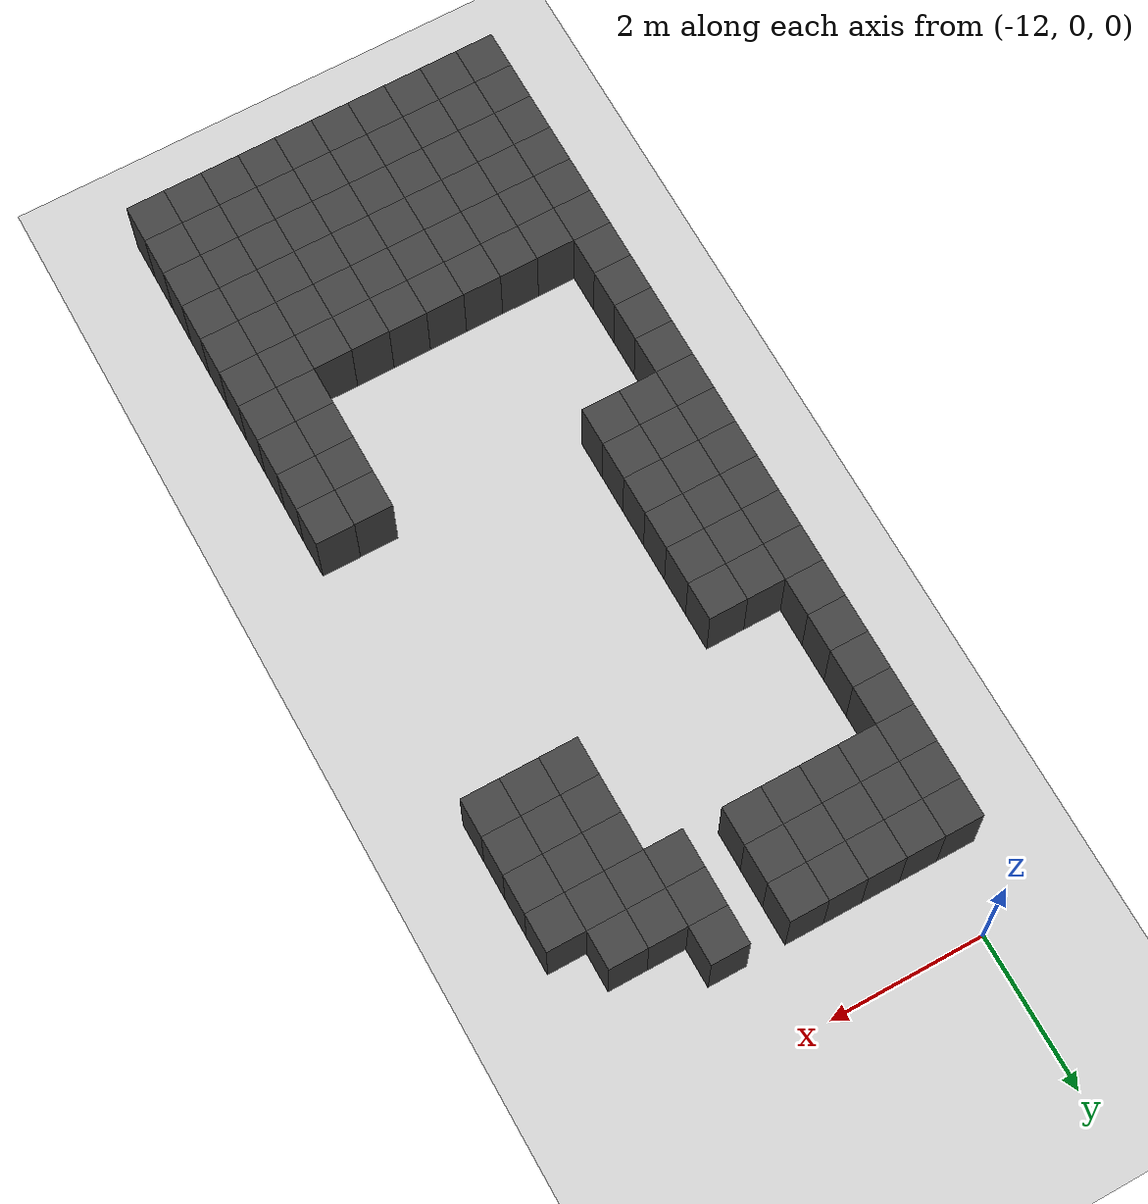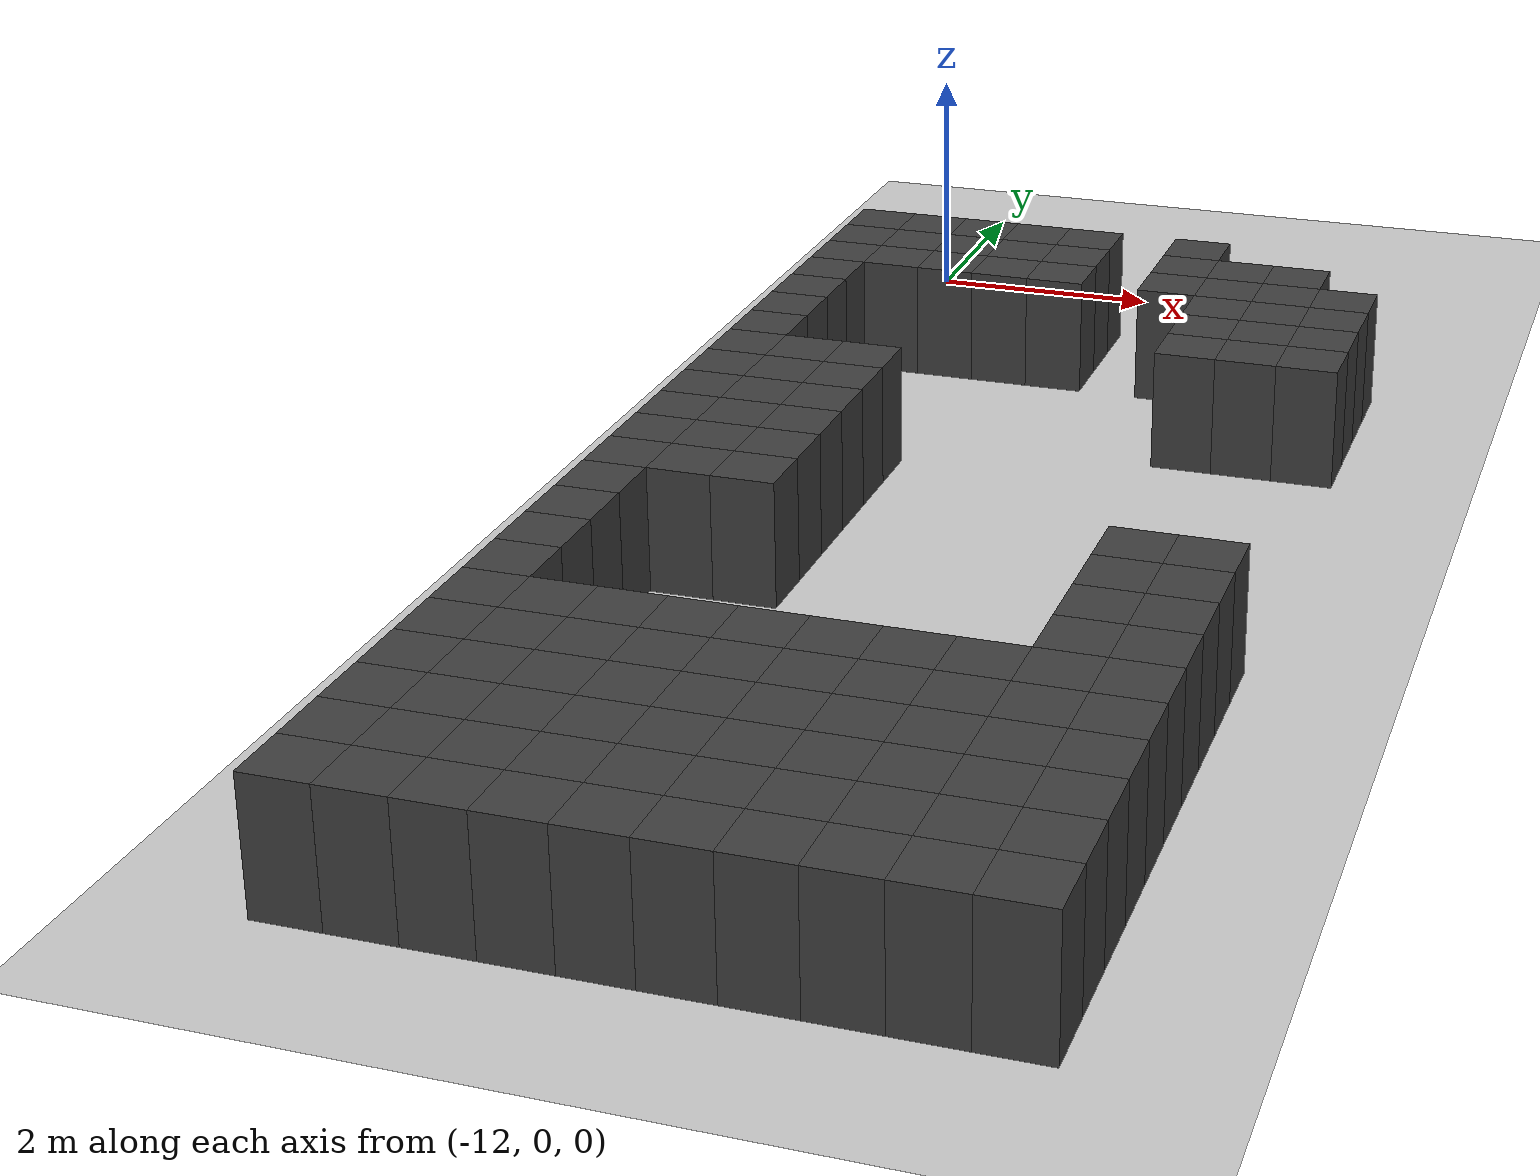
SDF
<sdf version="1.7">
 <world name="map_14056">
  <model name="ground_plane">
   <static>true</static>
   <link name="link">
    <collision name="collision">
     <geometry><plane><normal>0 0 1</normal><size>200 200</size></plane></geometry>
    </collision>
    <visual name="visual">
     <geometry><plane><normal>0 0 1</normal><size>200 200</size></plane></geometry>
     <material><ambient>0.8 0.8 0.8 1</ambient><diffuse>0.8 0.8 0.8 1</diffuse></material>
    </visual>
   </link>
  </model>
  <model name="maze_environment">
   <static>true</static>
   <link name="wall_960">
    <pose>-12.250 -1.250 0.500 0 0 0</pose>
    <collision name="col"><geometry><box><size>0.5 0.5 1.0</size></box></geometry></collision>
    <visual name="vis">
     <geometry><box><size>0.5 0.5 1.0</size></box></geometry>
     <material><ambient>0.15 0.15 0.15 1</ambient><diffuse>0.25 0.25 0.25 1</diffuse></material>
    </visual>
   </link>
   <link name="wall_961">
    <pose>-11.750 -1.250 0.500 0 0 0</pose>
    <collision name="col"><geometry><box><size>0.5 0.5 1.0</size></box></geometry></collision>
    <visual name="vis">
     <geometry><box><size>0.5 0.5 1.0</size></box></geometry>
     <material><ambient>0.15 0.15 0.15 1</ambient><diffuse>0.25 0.25 0.25 1</diffuse></material>
    </visual>
   </link>
   <link name="wall_962">
    <pose>-11.250 -1.250 0.500 0 0 0</pose>
    <collision name="col"><geometry><box><size>0.5 0.5 1.0</size></box></geometry></collision>
    <visual name="vis">
     <geometry><box><size>0.5 0.5 1.0</size></box></geometry>
     <material><ambient>0.15 0.15 0.15 1</ambient><diffuse>0.25 0.25 0.25 1</diffuse></material>
    </visual>
   </link>
   <link name="wall_963">
    <pose>-10.750 -1.250 0.500 0 0 0</pose>
    <collision name="col"><geometry><box><size>0.5 0.5 1.0</size></box></geometry></collision>
    <visual name="vis">
     <geometry><box><size>0.5 0.5 1.0</size></box></geometry>
     <material><ambient>0.15 0.15 0.15 1</ambient><diffuse>0.25 0.25 0.25 1</diffuse></material>
    </visual>
   </link>
   <link name="wall_964">
    <pose>-10.250 -1.250 0.500 0 0 0</pose>
    <collision name="col"><geometry><box><size>0.5 0.5 1.0</size></box></geometry></collision>
    <visual name="vis">
     <geometry><box><size>0.5 0.5 1.0</size></box></geometry>
     <material><ambient>0.15 0.15 0.15 1</ambient><diffuse>0.25 0.25 0.25 1</diffuse></material>
    </visual>
   </link>
   <link name="wall_965">
    <pose>-9.250 -1.250 0.500 0 0 0</pose>
    <collision name="col"><geometry><box><size>0.5 0.5 1.0</size></box></geometry></collision>
    <visual name="vis">
     <geometry><box><size>0.5 0.5 1.0</size></box></geometry>
     <material><ambient>0.15 0.15 0.15 1</ambient><diffuse>0.25 0.25 0.25 1</diffuse></material>
    </visual>
   </link>
   <link name="wall_1001">
    <pose>-12.250 -1.750 0.500 0 0 0</pose>
    <collision name="col"><geometry><box><size>0.5 0.5 1.0</size></box></geometry></collision>
    <visual name="vis">
     <geometry><box><size>0.5 0.5 1.0</size></box></geometry>
     <material><ambient>0.15 0.15 0.15 1</ambient><diffuse>0.25 0.25 0.25 1</diffuse></material>
    </visual>
   </link>
   <link name="wall_1002">
    <pose>-11.750 -1.750 0.500 0 0 0</pose>
    <collision name="col"><geometry><box><size>0.5 0.5 1.0</size></box></geometry></collision>
    <visual name="vis">
     <geometry><box><size>0.5 0.5 1.0</size></box></geometry>
     <material><ambient>0.15 0.15 0.15 1</ambient><diffuse>0.25 0.25 0.25 1</diffuse></material>
    </visual>
   </link>
   <link name="wall_1003">
    <pose>-11.250 -1.750 0.500 0 0 0</pose>
    <collision name="col"><geometry><box><size>0.5 0.5 1.0</size></box></geometry></collision>
    <visual name="vis">
     <geometry><box><size>0.5 0.5 1.0</size></box></geometry>
     <material><ambient>0.15 0.15 0.15 1</ambient><diffuse>0.25 0.25 0.25 1</diffuse></material>
    </visual>
   </link>
   <link name="wall_1004">
    <pose>-10.750 -1.750 0.500 0 0 0</pose>
    <collision name="col"><geometry><box><size>0.5 0.5 1.0</size></box></geometry></collision>
    <visual name="vis">
     <geometry><box><size>0.5 0.5 1.0</size></box></geometry>
     <material><ambient>0.15 0.15 0.15 1</ambient><diffuse>0.25 0.25 0.25 1</diffuse></material>
    </visual>
   </link>
   <link name="wall_1005">
    <pose>-10.250 -1.750 0.500 0 0 0</pose>
    <collision name="col"><geometry><box><size>0.5 0.5 1.0</size></box></geometry></collision>
    <visual name="vis">
     <geometry><box><size>0.5 0.5 1.0</size></box></geometry>
     <material><ambient>0.15 0.15 0.15 1</ambient><diffuse>0.25 0.25 0.25 1</diffuse></material>
    </visual>
   </link>
   <link name="wall_1006">
    <pose>-9.250 -1.750 0.500 0 0 0</pose>
    <collision name="col"><geometry><box><size>0.5 0.5 1.0</size></box></geometry></collision>
    <visual name="vis">
     <geometry><box><size>0.5 0.5 1.0</size></box></geometry>
     <material><ambient>0.15 0.15 0.15 1</ambient><diffuse>0.25 0.25 0.25 1</diffuse></material>
    </visual>
   </link>
   <link name="wall_1007">
    <pose>-8.750 -1.750 0.500 0 0 0</pose>
    <collision name="col"><geometry><box><size>0.5 0.5 1.0</size></box></geometry></collision>
    <visual name="vis">
     <geometry><box><size>0.5 0.5 1.0</size></box></geometry>
     <material><ambient>0.15 0.15 0.15 1</ambient><diffuse>0.25 0.25 0.25 1</diffuse></material>
    </visual>
   </link>
   <link name="wall_1008">
    <pose>-8.250 -1.750 0.500 0 0 0</pose>
    <collision name="col"><geometry><box><size>0.5 0.5 1.0</size></box></geometry></collision>
    <visual name="vis">
     <geometry><box><size>0.5 0.5 1.0</size></box></geometry>
     <material><ambient>0.15 0.15 0.15 1</ambient><diffuse>0.25 0.25 0.25 1</diffuse></material>
    </visual>
   </link>
   <link name="wall_1042">
    <pose>-12.250 -2.250 0.500 0 0 0</pose>
    <collision name="col"><geometry><box><size>0.5 0.5 1.0</size></box></geometry></collision>
    <visual name="vis">
     <geometry><box><size>0.5 0.5 1.0</size></box></geometry>
     <material><ambient>0.15 0.15 0.15 1</ambient><diffuse>0.25 0.25 0.25 1</diffuse></material>
    </visual>
   </link>
   <link name="wall_1043">
    <pose>-11.750 -2.250 0.500 0 0 0</pose>
    <collision name="col"><geometry><box><size>0.5 0.5 1.0</size></box></geometry></collision>
    <visual name="vis">
     <geometry><box><size>0.5 0.5 1.0</size></box></geometry>
     <material><ambient>0.15 0.15 0.15 1</ambient><diffuse>0.25 0.25 0.25 1</diffuse></material>
    </visual>
   </link>
   <link name="wall_1044">
    <pose>-11.250 -2.250 0.500 0 0 0</pose>
    <collision name="col"><geometry><box><size>0.5 0.5 1.0</size></box></geometry></collision>
    <visual name="vis">
     <geometry><box><size>0.5 0.5 1.0</size></box></geometry>
     <material><ambient>0.15 0.15 0.15 1</ambient><diffuse>0.25 0.25 0.25 1</diffuse></material>
    </visual>
   </link>
   <link name="wall_1045">
    <pose>-10.750 -2.250 0.500 0 0 0</pose>
    <collision name="col"><geometry><box><size>0.5 0.5 1.0</size></box></geometry></collision>
    <visual name="vis">
     <geometry><box><size>0.5 0.5 1.0</size></box></geometry>
     <material><ambient>0.15 0.15 0.15 1</ambient><diffuse>0.25 0.25 0.25 1</diffuse></material>
    </visual>
   </link>
   <link name="wall_1046">
    <pose>-10.250 -2.250 0.500 0 0 0</pose>
    <collision name="col"><geometry><box><size>0.5 0.5 1.0</size></box></geometry></collision>
    <visual name="vis">
     <geometry><box><size>0.5 0.5 1.0</size></box></geometry>
     <material><ambient>0.15 0.15 0.15 1</ambient><diffuse>0.25 0.25 0.25 1</diffuse></material>
    </visual>
   </link>
   <link name="wall_1047">
    <pose>-9.250 -2.250 0.500 0 0 0</pose>
    <collision name="col"><geometry><box><size>0.5 0.5 1.0</size></box></geometry></collision>
    <visual name="vis">
     <geometry><box><size>0.5 0.5 1.0</size></box></geometry>
     <material><ambient>0.15 0.15 0.15 1</ambient><diffuse>0.25 0.25 0.25 1</diffuse></material>
    </visual>
   </link>
   <link name="wall_1048">
    <pose>-8.750 -2.250 0.500 0 0 0</pose>
    <collision name="col"><geometry><box><size>0.5 0.5 1.0</size></box></geometry></collision>
    <visual name="vis">
     <geometry><box><size>0.5 0.5 1.0</size></box></geometry>
     <material><ambient>0.15 0.15 0.15 1</ambient><diffuse>0.25 0.25 0.25 1</diffuse></material>
    </visual>
   </link>
   <link name="wall_1049">
    <pose>-8.250 -2.250 0.500 0 0 0</pose>
    <collision name="col"><geometry><box><size>0.5 0.5 1.0</size></box></geometry></collision>
    <visual name="vis">
     <geometry><box><size>0.5 0.5 1.0</size></box></geometry>
     <material><ambient>0.15 0.15 0.15 1</ambient><diffuse>0.25 0.25 0.25 1</diffuse></material>
    </visual>
   </link>
   <link name="wall_1050">
    <pose>-7.750 -2.250 0.500 0 0 0</pose>
    <collision name="col"><geometry><box><size>0.5 0.5 1.0</size></box></geometry></collision>
    <visual name="vis">
     <geometry><box><size>0.5 0.5 1.0</size></box></geometry>
     <material><ambient>0.15 0.15 0.15 1</ambient><diffuse>0.25 0.25 0.25 1</diffuse></material>
    </visual>
   </link>
   <link name="wall_1075">
    <pose>-12.250 -2.750 0.500 0 0 0</pose>
    <collision name="col"><geometry><box><size>0.5 0.5 1.0</size></box></geometry></collision>
    <visual name="vis">
     <geometry><box><size>0.5 0.5 1.0</size></box></geometry>
     <material><ambient>0.15 0.15 0.15 1</ambient><diffuse>0.25 0.25 0.25 1</diffuse></material>
    </visual>
   </link>
   <link name="wall_1076">
    <pose>-8.750 -2.750 0.500 0 0 0</pose>
    <collision name="col"><geometry><box><size>0.5 0.5 1.0</size></box></geometry></collision>
    <visual name="vis">
     <geometry><box><size>0.5 0.5 1.0</size></box></geometry>
     <material><ambient>0.15 0.15 0.15 1</ambient><diffuse>0.25 0.25 0.25 1</diffuse></material>
    </visual>
   </link>
   <link name="wall_1077">
    <pose>-8.250 -2.750 0.500 0 0 0</pose>
    <collision name="col"><geometry><box><size>0.5 0.5 1.0</size></box></geometry></collision>
    <visual name="vis">
     <geometry><box><size>0.5 0.5 1.0</size></box></geometry>
     <material><ambient>0.15 0.15 0.15 1</ambient><diffuse>0.25 0.25 0.25 1</diffuse></material>
    </visual>
   </link>
   <link name="wall_1078">
    <pose>-7.750 -2.750 0.500 0 0 0</pose>
    <collision name="col"><geometry><box><size>0.5 0.5 1.0</size></box></geometry></collision>
    <visual name="vis">
     <geometry><box><size>0.5 0.5 1.0</size></box></geometry>
     <material><ambient>0.15 0.15 0.15 1</ambient><diffuse>0.25 0.25 0.25 1</diffuse></material>
    </visual>
   </link>
   <link name="wall_1103">
    <pose>-12.250 -3.250 0.500 0 0 0</pose>
    <collision name="col"><geometry><box><size>0.5 0.5 1.0</size></box></geometry></collision>
    <visual name="vis">
     <geometry><box><size>0.5 0.5 1.0</size></box></geometry>
     <material><ambient>0.15 0.15 0.15 1</ambient><diffuse>0.25 0.25 0.25 1</diffuse></material>
    </visual>
   </link>
   <link name="wall_1104">
    <pose>-8.750 -3.250 0.500 0 0 0</pose>
    <collision name="col"><geometry><box><size>0.5 0.5 1.0</size></box></geometry></collision>
    <visual name="vis">
     <geometry><box><size>0.5 0.5 1.0</size></box></geometry>
     <material><ambient>0.15 0.15 0.15 1</ambient><diffuse>0.25 0.25 0.25 1</diffuse></material>
    </visual>
   </link>
   <link name="wall_1105">
    <pose>-8.250 -3.250 0.500 0 0 0</pose>
    <collision name="col"><geometry><box><size>0.5 0.5 1.0</size></box></geometry></collision>
    <visual name="vis">
     <geometry><box><size>0.5 0.5 1.0</size></box></geometry>
     <material><ambient>0.15 0.15 0.15 1</ambient><diffuse>0.25 0.25 0.25 1</diffuse></material>
    </visual>
   </link>
   <link name="wall_1106">
    <pose>-7.750 -3.250 0.500 0 0 0</pose>
    <collision name="col"><geometry><box><size>0.5 0.5 1.0</size></box></geometry></collision>
    <visual name="vis">
     <geometry><box><size>0.5 0.5 1.0</size></box></geometry>
     <material><ambient>0.15 0.15 0.15 1</ambient><diffuse>0.25 0.25 0.25 1</diffuse></material>
    </visual>
   </link>
   <link name="wall_1131">
    <pose>-12.250 -3.750 0.500 0 0 0</pose>
    <collision name="col"><geometry><box><size>0.5 0.5 1.0</size></box></geometry></collision>
    <visual name="vis">
     <geometry><box><size>0.5 0.5 1.0</size></box></geometry>
     <material><ambient>0.15 0.15 0.15 1</ambient><diffuse>0.25 0.25 0.25 1</diffuse></material>
    </visual>
   </link>
   <link name="wall_1132">
    <pose>-8.750 -3.750 0.500 0 0 0</pose>
    <collision name="col"><geometry><box><size>0.5 0.5 1.0</size></box></geometry></collision>
    <visual name="vis">
     <geometry><box><size>0.5 0.5 1.0</size></box></geometry>
     <material><ambient>0.15 0.15 0.15 1</ambient><diffuse>0.25 0.25 0.25 1</diffuse></material>
    </visual>
   </link>
   <link name="wall_1133">
    <pose>-8.250 -3.750 0.500 0 0 0</pose>
    <collision name="col"><geometry><box><size>0.5 0.5 1.0</size></box></geometry></collision>
    <visual name="vis">
     <geometry><box><size>0.5 0.5 1.0</size></box></geometry>
     <material><ambient>0.15 0.15 0.15 1</ambient><diffuse>0.25 0.25 0.25 1</diffuse></material>
    </visual>
   </link>
   <link name="wall_1134">
    <pose>-7.750 -3.750 0.500 0 0 0</pose>
    <collision name="col"><geometry><box><size>0.5 0.5 1.0</size></box></geometry></collision>
    <visual name="vis">
     <geometry><box><size>0.5 0.5 1.0</size></box></geometry>
     <material><ambient>0.15 0.15 0.15 1</ambient><diffuse>0.25 0.25 0.25 1</diffuse></material>
    </visual>
   </link>
   <link name="wall_1167">
    <pose>-12.250 -4.250 0.500 0 0 0</pose>
    <collision name="col"><geometry><box><size>0.5 0.5 1.0</size></box></geometry></collision>
    <visual name="vis">
     <geometry><box><size>0.5 0.5 1.0</size></box></geometry>
     <material><ambient>0.15 0.15 0.15 1</ambient><diffuse>0.25 0.25 0.25 1</diffuse></material>
    </visual>
   </link>
   <link name="wall_1199">
    <pose>-12.250 -4.750 0.500 0 0 0</pose>
    <collision name="col"><geometry><box><size>0.5 0.5 1.0</size></box></geometry></collision>
    <visual name="vis">
     <geometry><box><size>0.5 0.5 1.0</size></box></geometry>
     <material><ambient>0.15 0.15 0.15 1</ambient><diffuse>0.25 0.25 0.25 1</diffuse></material>
    </visual>
   </link>
   <link name="wall_1200">
    <pose>-11.750 -4.750 0.500 0 0 0</pose>
    <collision name="col"><geometry><box><size>0.5 0.5 1.0</size></box></geometry></collision>
    <visual name="vis">
     <geometry><box><size>0.5 0.5 1.0</size></box></geometry>
     <material><ambient>0.15 0.15 0.15 1</ambient><diffuse>0.25 0.25 0.25 1</diffuse></material>
    </visual>
   </link>
   <link name="wall_1201">
    <pose>-11.250 -4.750 0.500 0 0 0</pose>
    <collision name="col"><geometry><box><size>0.5 0.5 1.0</size></box></geometry></collision>
    <visual name="vis">
     <geometry><box><size>0.5 0.5 1.0</size></box></geometry>
     <material><ambient>0.15 0.15 0.15 1</ambient><diffuse>0.25 0.25 0.25 1</diffuse></material>
    </visual>
   </link>
   <link name="wall_1240">
    <pose>-12.250 -5.250 0.500 0 0 0</pose>
    <collision name="col"><geometry><box><size>0.5 0.5 1.0</size></box></geometry></collision>
    <visual name="vis">
     <geometry><box><size>0.5 0.5 1.0</size></box></geometry>
     <material><ambient>0.15 0.15 0.15 1</ambient><diffuse>0.25 0.25 0.25 1</diffuse></material>
    </visual>
   </link>
   <link name="wall_1241">
    <pose>-11.750 -5.250 0.500 0 0 0</pose>
    <collision name="col"><geometry><box><size>0.5 0.5 1.0</size></box></geometry></collision>
    <visual name="vis">
     <geometry><box><size>0.5 0.5 1.0</size></box></geometry>
     <material><ambient>0.15 0.15 0.15 1</ambient><diffuse>0.25 0.25 0.25 1</diffuse></material>
    </visual>
   </link>
   <link name="wall_1242">
    <pose>-11.250 -5.250 0.500 0 0 0</pose>
    <collision name="col"><geometry><box><size>0.5 0.5 1.0</size></box></geometry></collision>
    <visual name="vis">
     <geometry><box><size>0.5 0.5 1.0</size></box></geometry>
     <material><ambient>0.15 0.15 0.15 1</ambient><diffuse>0.25 0.25 0.25 1</diffuse></material>
    </visual>
   </link>
   <link name="wall_1281">
    <pose>-12.250 -5.750 0.500 0 0 0</pose>
    <collision name="col"><geometry><box><size>0.5 0.5 1.0</size></box></geometry></collision>
    <visual name="vis">
     <geometry><box><size>0.5 0.5 1.0</size></box></geometry>
     <material><ambient>0.15 0.15 0.15 1</ambient><diffuse>0.25 0.25 0.25 1</diffuse></material>
    </visual>
   </link>
   <link name="wall_1282">
    <pose>-11.750 -5.750 0.500 0 0 0</pose>
    <collision name="col"><geometry><box><size>0.5 0.5 1.0</size></box></geometry></collision>
    <visual name="vis">
     <geometry><box><size>0.5 0.5 1.0</size></box></geometry>
     <material><ambient>0.15 0.15 0.15 1</ambient><diffuse>0.25 0.25 0.25 1</diffuse></material>
    </visual>
   </link>
   <link name="wall_1283">
    <pose>-11.250 -5.750 0.500 0 0 0</pose>
    <collision name="col"><geometry><box><size>0.5 0.5 1.0</size></box></geometry></collision>
    <visual name="vis">
     <geometry><box><size>0.5 0.5 1.0</size></box></geometry>
     <material><ambient>0.15 0.15 0.15 1</ambient><diffuse>0.25 0.25 0.25 1</diffuse></material>
    </visual>
   </link>
   <link name="wall_1314">
    <pose>-12.250 -6.250 0.500 0 0 0</pose>
    <collision name="col"><geometry><box><size>0.5 0.5 1.0</size></box></geometry></collision>
    <visual name="vis">
     <geometry><box><size>0.5 0.5 1.0</size></box></geometry>
     <material><ambient>0.15 0.15 0.15 1</ambient><diffuse>0.25 0.25 0.25 1</diffuse></material>
    </visual>
   </link>
   <link name="wall_1315">
    <pose>-11.750 -6.250 0.500 0 0 0</pose>
    <collision name="col"><geometry><box><size>0.5 0.5 1.0</size></box></geometry></collision>
    <visual name="vis">
     <geometry><box><size>0.5 0.5 1.0</size></box></geometry>
     <material><ambient>0.15 0.15 0.15 1</ambient><diffuse>0.25 0.25 0.25 1</diffuse></material>
    </visual>
   </link>
   <link name="wall_1316">
    <pose>-11.250 -6.250 0.500 0 0 0</pose>
    <collision name="col"><geometry><box><size>0.5 0.5 1.0</size></box></geometry></collision>
    <visual name="vis">
     <geometry><box><size>0.5 0.5 1.0</size></box></geometry>
     <material><ambient>0.15 0.15 0.15 1</ambient><diffuse>0.25 0.25 0.25 1</diffuse></material>
    </visual>
   </link>
   <link name="wall_1347">
    <pose>-12.250 -6.750 0.500 0 0 0</pose>
    <collision name="col"><geometry><box><size>0.5 0.5 1.0</size></box></geometry></collision>
    <visual name="vis">
     <geometry><box><size>0.5 0.5 1.0</size></box></geometry>
     <material><ambient>0.15 0.15 0.15 1</ambient><diffuse>0.25 0.25 0.25 1</diffuse></material>
    </visual>
   </link>
   <link name="wall_1348">
    <pose>-11.750 -6.750 0.500 0 0 0</pose>
    <collision name="col"><geometry><box><size>0.5 0.5 1.0</size></box></geometry></collision>
    <visual name="vis">
     <geometry><box><size>0.5 0.5 1.0</size></box></geometry>
     <material><ambient>0.15 0.15 0.15 1</ambient><diffuse>0.25 0.25 0.25 1</diffuse></material>
    </visual>
   </link>
   <link name="wall_1349">
    <pose>-11.250 -6.750 0.500 0 0 0</pose>
    <collision name="col"><geometry><box><size>0.5 0.5 1.0</size></box></geometry></collision>
    <visual name="vis">
     <geometry><box><size>0.5 0.5 1.0</size></box></geometry>
     <material><ambient>0.15 0.15 0.15 1</ambient><diffuse>0.25 0.25 0.25 1</diffuse></material>
    </visual>
   </link>
   <link name="wall_1378">
    <pose>-12.250 -7.250 0.500 0 0 0</pose>
    <collision name="col"><geometry><box><size>0.5 0.5 1.0</size></box></geometry></collision>
    <visual name="vis">
     <geometry><box><size>0.5 0.5 1.0</size></box></geometry>
     <material><ambient>0.15 0.15 0.15 1</ambient><diffuse>0.25 0.25 0.25 1</diffuse></material>
    </visual>
   </link>
   <link name="wall_1379">
    <pose>-11.750 -7.250 0.500 0 0 0</pose>
    <collision name="col"><geometry><box><size>0.5 0.5 1.0</size></box></geometry></collision>
    <visual name="vis">
     <geometry><box><size>0.5 0.5 1.0</size></box></geometry>
     <material><ambient>0.15 0.15 0.15 1</ambient><diffuse>0.25 0.25 0.25 1</diffuse></material>
    </visual>
   </link>
   <link name="wall_1380">
    <pose>-11.250 -7.250 0.500 0 0 0</pose>
    <collision name="col"><geometry><box><size>0.5 0.5 1.0</size></box></geometry></collision>
    <visual name="vis">
     <geometry><box><size>0.5 0.5 1.0</size></box></geometry>
     <material><ambient>0.15 0.15 0.15 1</ambient><diffuse>0.25 0.25 0.25 1</diffuse></material>
    </visual>
   </link>
   <link name="wall_1412">
    <pose>-12.250 -7.750 0.500 0 0 0</pose>
    <collision name="col"><geometry><box><size>0.5 0.5 1.0</size></box></geometry></collision>
    <visual name="vis">
     <geometry><box><size>0.5 0.5 1.0</size></box></geometry>
     <material><ambient>0.15 0.15 0.15 1</ambient><diffuse>0.25 0.25 0.25 1</diffuse></material>
    </visual>
   </link>
   <link name="wall_1413">
    <pose>-8.250 -7.750 0.500 0 0 0</pose>
    <collision name="col"><geometry><box><size>0.5 0.5 1.0</size></box></geometry></collision>
    <visual name="vis">
     <geometry><box><size>0.5 0.5 1.0</size></box></geometry>
     <material><ambient>0.15 0.15 0.15 1</ambient><diffuse>0.25 0.25 0.25 1</diffuse></material>
    </visual>
   </link>
   <link name="wall_1414">
    <pose>-7.750 -7.750 0.500 0 0 0</pose>
    <collision name="col"><geometry><box><size>0.5 0.5 1.0</size></box></geometry></collision>
    <visual name="vis">
     <geometry><box><size>0.5 0.5 1.0</size></box></geometry>
     <material><ambient>0.15 0.15 0.15 1</ambient><diffuse>0.25 0.25 0.25 1</diffuse></material>
    </visual>
   </link>
   <link name="wall_1447">
    <pose>-12.250 -8.250 0.500 0 0 0</pose>
    <collision name="col"><geometry><box><size>0.5 0.5 1.0</size></box></geometry></collision>
    <visual name="vis">
     <geometry><box><size>0.5 0.5 1.0</size></box></geometry>
     <material><ambient>0.15 0.15 0.15 1</ambient><diffuse>0.25 0.25 0.25 1</diffuse></material>
    </visual>
   </link>
   <link name="wall_1448">
    <pose>-8.250 -8.250 0.500 0 0 0</pose>
    <collision name="col"><geometry><box><size>0.5 0.5 1.0</size></box></geometry></collision>
    <visual name="vis">
     <geometry><box><size>0.5 0.5 1.0</size></box></geometry>
     <material><ambient>0.15 0.15 0.15 1</ambient><diffuse>0.25 0.25 0.25 1</diffuse></material>
    </visual>
   </link>
   <link name="wall_1449">
    <pose>-7.750 -8.250 0.500 0 0 0</pose>
    <collision name="col"><geometry><box><size>0.5 0.5 1.0</size></box></geometry></collision>
    <visual name="vis">
     <geometry><box><size>0.5 0.5 1.0</size></box></geometry>
     <material><ambient>0.15 0.15 0.15 1</ambient><diffuse>0.25 0.25 0.25 1</diffuse></material>
    </visual>
   </link>
   <link name="wall_1483">
    <pose>-12.250 -8.750 0.500 0 0 0</pose>
    <collision name="col"><geometry><box><size>0.5 0.5 1.0</size></box></geometry></collision>
    <visual name="vis">
     <geometry><box><size>0.5 0.5 1.0</size></box></geometry>
     <material><ambient>0.15 0.15 0.15 1</ambient><diffuse>0.25 0.25 0.25 1</diffuse></material>
    </visual>
   </link>
   <link name="wall_1484">
    <pose>-8.250 -8.750 0.500 0 0 0</pose>
    <collision name="col"><geometry><box><size>0.5 0.5 1.0</size></box></geometry></collision>
    <visual name="vis">
     <geometry><box><size>0.5 0.5 1.0</size></box></geometry>
     <material><ambient>0.15 0.15 0.15 1</ambient><diffuse>0.25 0.25 0.25 1</diffuse></material>
    </visual>
   </link>
   <link name="wall_1485">
    <pose>-7.750 -8.750 0.500 0 0 0</pose>
    <collision name="col"><geometry><box><size>0.5 0.5 1.0</size></box></geometry></collision>
    <visual name="vis">
     <geometry><box><size>0.5 0.5 1.0</size></box></geometry>
     <material><ambient>0.15 0.15 0.15 1</ambient><diffuse>0.25 0.25 0.25 1</diffuse></material>
    </visual>
   </link>
   <link name="wall_1519">
    <pose>-12.250 -9.250 0.500 0 0 0</pose>
    <collision name="col"><geometry><box><size>0.5 0.5 1.0</size></box></geometry></collision>
    <visual name="vis">
     <geometry><box><size>0.5 0.5 1.0</size></box></geometry>
     <material><ambient>0.15 0.15 0.15 1</ambient><diffuse>0.25 0.25 0.25 1</diffuse></material>
    </visual>
   </link>
   <link name="wall_1520">
    <pose>-8.250 -9.250 0.500 0 0 0</pose>
    <collision name="col"><geometry><box><size>0.5 0.5 1.0</size></box></geometry></collision>
    <visual name="vis">
     <geometry><box><size>0.5 0.5 1.0</size></box></geometry>
     <material><ambient>0.15 0.15 0.15 1</ambient><diffuse>0.25 0.25 0.25 1</diffuse></material>
    </visual>
   </link>
   <link name="wall_1521">
    <pose>-7.750 -9.250 0.500 0 0 0</pose>
    <collision name="col"><geometry><box><size>0.5 0.5 1.0</size></box></geometry></collision>
    <visual name="vis">
     <geometry><box><size>0.5 0.5 1.0</size></box></geometry>
     <material><ambient>0.15 0.15 0.15 1</ambient><diffuse>0.25 0.25 0.25 1</diffuse></material>
    </visual>
   </link>
   <link name="wall_1555">
    <pose>-12.250 -9.750 0.500 0 0 0</pose>
    <collision name="col"><geometry><box><size>0.5 0.5 1.0</size></box></geometry></collision>
    <visual name="vis">
     <geometry><box><size>0.5 0.5 1.0</size></box></geometry>
     <material><ambient>0.15 0.15 0.15 1</ambient><diffuse>0.25 0.25 0.25 1</diffuse></material>
    </visual>
   </link>
   <link name="wall_1556">
    <pose>-11.750 -9.750 0.500 0 0 0</pose>
    <collision name="col"><geometry><box><size>0.5 0.5 1.0</size></box></geometry></collision>
    <visual name="vis">
     <geometry><box><size>0.5 0.5 1.0</size></box></geometry>
     <material><ambient>0.15 0.15 0.15 1</ambient><diffuse>0.25 0.25 0.25 1</diffuse></material>
    </visual>
   </link>
   <link name="wall_1557">
    <pose>-11.250 -9.750 0.500 0 0 0</pose>
    <collision name="col"><geometry><box><size>0.5 0.5 1.0</size></box></geometry></collision>
    <visual name="vis">
     <geometry><box><size>0.5 0.5 1.0</size></box></geometry>
     <material><ambient>0.15 0.15 0.15 1</ambient><diffuse>0.25 0.25 0.25 1</diffuse></material>
    </visual>
   </link>
   <link name="wall_1558">
    <pose>-10.750 -9.750 0.500 0 0 0</pose>
    <collision name="col"><geometry><box><size>0.5 0.5 1.0</size></box></geometry></collision>
    <visual name="vis">
     <geometry><box><size>0.5 0.5 1.0</size></box></geometry>
     <material><ambient>0.15 0.15 0.15 1</ambient><diffuse>0.25 0.25 0.25 1</diffuse></material>
    </visual>
   </link>
   <link name="wall_1559">
    <pose>-10.250 -9.750 0.500 0 0 0</pose>
    <collision name="col"><geometry><box><size>0.5 0.5 1.0</size></box></geometry></collision>
    <visual name="vis">
     <geometry><box><size>0.5 0.5 1.0</size></box></geometry>
     <material><ambient>0.15 0.15 0.15 1</ambient><diffuse>0.25 0.25 0.25 1</diffuse></material>
    </visual>
   </link>
   <link name="wall_1560">
    <pose>-9.750 -9.750 0.500 0 0 0</pose>
    <collision name="col"><geometry><box><size>0.5 0.5 1.0</size></box></geometry></collision>
    <visual name="vis">
     <geometry><box><size>0.5 0.5 1.0</size></box></geometry>
     <material><ambient>0.15 0.15 0.15 1</ambient><diffuse>0.25 0.25 0.25 1</diffuse></material>
    </visual>
   </link>
   <link name="wall_1561">
    <pose>-9.250 -9.750 0.500 0 0 0</pose>
    <collision name="col"><geometry><box><size>0.5 0.5 1.0</size></box></geometry></collision>
    <visual name="vis">
     <geometry><box><size>0.5 0.5 1.0</size></box></geometry>
     <material><ambient>0.15 0.15 0.15 1</ambient><diffuse>0.25 0.25 0.25 1</diffuse></material>
    </visual>
   </link>
   <link name="wall_1562">
    <pose>-8.750 -9.750 0.500 0 0 0</pose>
    <collision name="col"><geometry><box><size>0.5 0.5 1.0</size></box></geometry></collision>
    <visual name="vis">
     <geometry><box><size>0.5 0.5 1.0</size></box></geometry>
     <material><ambient>0.15 0.15 0.15 1</ambient><diffuse>0.25 0.25 0.25 1</diffuse></material>
    </visual>
   </link>
   <link name="wall_1563">
    <pose>-8.250 -9.750 0.500 0 0 0</pose>
    <collision name="col"><geometry><box><size>0.5 0.5 1.0</size></box></geometry></collision>
    <visual name="vis">
     <geometry><box><size>0.5 0.5 1.0</size></box></geometry>
     <material><ambient>0.15 0.15 0.15 1</ambient><diffuse>0.25 0.25 0.25 1</diffuse></material>
    </visual>
   </link>
   <link name="wall_1564">
    <pose>-7.750 -9.750 0.500 0 0 0</pose>
    <collision name="col"><geometry><box><size>0.5 0.5 1.0</size></box></geometry></collision>
    <visual name="vis">
     <geometry><box><size>0.5 0.5 1.0</size></box></geometry>
     <material><ambient>0.15 0.15 0.15 1</ambient><diffuse>0.25 0.25 0.25 1</diffuse></material>
    </visual>
   </link>
   <link name="wall_1588">
    <pose>-12.250 -10.250 0.500 0 0 0</pose>
    <collision name="col"><geometry><box><size>0.5 0.5 1.0</size></box></geometry></collision>
    <visual name="vis">
     <geometry><box><size>0.5 0.5 1.0</size></box></geometry>
     <material><ambient>0.15 0.15 0.15 1</ambient><diffuse>0.25 0.25 0.25 1</diffuse></material>
    </visual>
   </link>
   <link name="wall_1589">
    <pose>-11.750 -10.250 0.500 0 0 0</pose>
    <collision name="col"><geometry><box><size>0.5 0.5 1.0</size></box></geometry></collision>
    <visual name="vis">
     <geometry><box><size>0.5 0.5 1.0</size></box></geometry>
     <material><ambient>0.15 0.15 0.15 1</ambient><diffuse>0.25 0.25 0.25 1</diffuse></material>
    </visual>
   </link>
   <link name="wall_1590">
    <pose>-11.250 -10.250 0.500 0 0 0</pose>
    <collision name="col"><geometry><box><size>0.5 0.5 1.0</size></box></geometry></collision>
    <visual name="vis">
     <geometry><box><size>0.5 0.5 1.0</size></box></geometry>
     <material><ambient>0.15 0.15 0.15 1</ambient><diffuse>0.25 0.25 0.25 1</diffuse></material>
    </visual>
   </link>
   <link name="wall_1591">
    <pose>-10.750 -10.250 0.500 0 0 0</pose>
    <collision name="col"><geometry><box><size>0.5 0.5 1.0</size></box></geometry></collision>
    <visual name="vis">
     <geometry><box><size>0.5 0.5 1.0</size></box></geometry>
     <material><ambient>0.15 0.15 0.15 1</ambient><diffuse>0.25 0.25 0.25 1</diffuse></material>
    </visual>
   </link>
   <link name="wall_1592">
    <pose>-10.250 -10.250 0.500 0 0 0</pose>
    <collision name="col"><geometry><box><size>0.5 0.5 1.0</size></box></geometry></collision>
    <visual name="vis">
     <geometry><box><size>0.5 0.5 1.0</size></box></geometry>
     <material><ambient>0.15 0.15 0.15 1</ambient><diffuse>0.25 0.25 0.25 1</diffuse></material>
    </visual>
   </link>
   <link name="wall_1593">
    <pose>-9.750 -10.250 0.500 0 0 0</pose>
    <collision name="col"><geometry><box><size>0.5 0.5 1.0</size></box></geometry></collision>
    <visual name="vis">
     <geometry><box><size>0.5 0.5 1.0</size></box></geometry>
     <material><ambient>0.15 0.15 0.15 1</ambient><diffuse>0.25 0.25 0.25 1</diffuse></material>
    </visual>
   </link>
   <link name="wall_1594">
    <pose>-9.250 -10.250 0.500 0 0 0</pose>
    <collision name="col"><geometry><box><size>0.5 0.5 1.0</size></box></geometry></collision>
    <visual name="vis">
     <geometry><box><size>0.5 0.5 1.0</size></box></geometry>
     <material><ambient>0.15 0.15 0.15 1</ambient><diffuse>0.25 0.25 0.25 1</diffuse></material>
    </visual>
   </link>
   <link name="wall_1595">
    <pose>-8.750 -10.250 0.500 0 0 0</pose>
    <collision name="col"><geometry><box><size>0.5 0.5 1.0</size></box></geometry></collision>
    <visual name="vis">
     <geometry><box><size>0.5 0.5 1.0</size></box></geometry>
     <material><ambient>0.15 0.15 0.15 1</ambient><diffuse>0.25 0.25 0.25 1</diffuse></material>
    </visual>
   </link>
   <link name="wall_1596">
    <pose>-8.250 -10.250 0.500 0 0 0</pose>
    <collision name="col"><geometry><box><size>0.5 0.5 1.0</size></box></geometry></collision>
    <visual name="vis">
     <geometry><box><size>0.5 0.5 1.0</size></box></geometry>
     <material><ambient>0.15 0.15 0.15 1</ambient><diffuse>0.25 0.25 0.25 1</diffuse></material>
    </visual>
   </link>
   <link name="wall_1597">
    <pose>-7.750 -10.250 0.500 0 0 0</pose>
    <collision name="col"><geometry><box><size>0.5 0.5 1.0</size></box></geometry></collision>
    <visual name="vis">
     <geometry><box><size>0.5 0.5 1.0</size></box></geometry>
     <material><ambient>0.15 0.15 0.15 1</ambient><diffuse>0.25 0.25 0.25 1</diffuse></material>
    </visual>
   </link>
   <link name="wall_1624">
    <pose>-12.250 -10.750 0.500 0 0 0</pose>
    <collision name="col"><geometry><box><size>0.5 0.5 1.0</size></box></geometry></collision>
    <visual name="vis">
     <geometry><box><size>0.5 0.5 1.0</size></box></geometry>
     <material><ambient>0.15 0.15 0.15 1</ambient><diffuse>0.25 0.25 0.25 1</diffuse></material>
    </visual>
   </link>
   <link name="wall_1625">
    <pose>-11.750 -10.750 0.500 0 0 0</pose>
    <collision name="col"><geometry><box><size>0.5 0.5 1.0</size></box></geometry></collision>
    <visual name="vis">
     <geometry><box><size>0.5 0.5 1.0</size></box></geometry>
     <material><ambient>0.15 0.15 0.15 1</ambient><diffuse>0.25 0.25 0.25 1</diffuse></material>
    </visual>
   </link>
   <link name="wall_1626">
    <pose>-11.250 -10.750 0.500 0 0 0</pose>
    <collision name="col"><geometry><box><size>0.5 0.5 1.0</size></box></geometry></collision>
    <visual name="vis">
     <geometry><box><size>0.5 0.5 1.0</size></box></geometry>
     <material><ambient>0.15 0.15 0.15 1</ambient><diffuse>0.25 0.25 0.25 1</diffuse></material>
    </visual>
   </link>
   <link name="wall_1627">
    <pose>-10.750 -10.750 0.500 0 0 0</pose>
    <collision name="col"><geometry><box><size>0.5 0.5 1.0</size></box></geometry></collision>
    <visual name="vis">
     <geometry><box><size>0.5 0.5 1.0</size></box></geometry>
     <material><ambient>0.15 0.15 0.15 1</ambient><diffuse>0.25 0.25 0.25 1</diffuse></material>
    </visual>
   </link>
   <link name="wall_1628">
    <pose>-10.250 -10.750 0.500 0 0 0</pose>
    <collision name="col"><geometry><box><size>0.5 0.5 1.0</size></box></geometry></collision>
    <visual name="vis">
     <geometry><box><size>0.5 0.5 1.0</size></box></geometry>
     <material><ambient>0.15 0.15 0.15 1</ambient><diffuse>0.25 0.25 0.25 1</diffuse></material>
    </visual>
   </link>
   <link name="wall_1629">
    <pose>-9.750 -10.750 0.500 0 0 0</pose>
    <collision name="col"><geometry><box><size>0.5 0.5 1.0</size></box></geometry></collision>
    <visual name="vis">
     <geometry><box><size>0.5 0.5 1.0</size></box></geometry>
     <material><ambient>0.15 0.15 0.15 1</ambient><diffuse>0.25 0.25 0.25 1</diffuse></material>
    </visual>
   </link>
   <link name="wall_1630">
    <pose>-9.250 -10.750 0.500 0 0 0</pose>
    <collision name="col"><geometry><box><size>0.5 0.5 1.0</size></box></geometry></collision>
    <visual name="vis">
     <geometry><box><size>0.5 0.5 1.0</size></box></geometry>
     <material><ambient>0.15 0.15 0.15 1</ambient><diffuse>0.25 0.25 0.25 1</diffuse></material>
    </visual>
   </link>
   <link name="wall_1631">
    <pose>-8.750 -10.750 0.500 0 0 0</pose>
    <collision name="col"><geometry><box><size>0.5 0.5 1.0</size></box></geometry></collision>
    <visual name="vis">
     <geometry><box><size>0.5 0.5 1.0</size></box></geometry>
     <material><ambient>0.15 0.15 0.15 1</ambient><diffuse>0.25 0.25 0.25 1</diffuse></material>
    </visual>
   </link>
   <link name="wall_1632">
    <pose>-8.250 -10.750 0.500 0 0 0</pose>
    <collision name="col"><geometry><box><size>0.5 0.5 1.0</size></box></geometry></collision>
    <visual name="vis">
     <geometry><box><size>0.5 0.5 1.0</size></box></geometry>
     <material><ambient>0.15 0.15 0.15 1</ambient><diffuse>0.25 0.25 0.25 1</diffuse></material>
    </visual>
   </link>
   <link name="wall_1633">
    <pose>-7.750 -10.750 0.500 0 0 0</pose>
    <collision name="col"><geometry><box><size>0.5 0.5 1.0</size></box></geometry></collision>
    <visual name="vis">
     <geometry><box><size>0.5 0.5 1.0</size></box></geometry>
     <material><ambient>0.15 0.15 0.15 1</ambient><diffuse>0.25 0.25 0.25 1</diffuse></material>
    </visual>
   </link>
   <link name="wall_1649">
    <pose>-12.250 -11.250 0.500 0 0 0</pose>
    <collision name="col"><geometry><box><size>0.5 0.5 1.0</size></box></geometry></collision>
    <visual name="vis">
     <geometry><box><size>0.5 0.5 1.0</size></box></geometry>
     <material><ambient>0.15 0.15 0.15 1</ambient><diffuse>0.25 0.25 0.25 1</diffuse></material>
    </visual>
   </link>
   <link name="wall_1650">
    <pose>-11.750 -11.250 0.500 0 0 0</pose>
    <collision name="col"><geometry><box><size>0.5 0.5 1.0</size></box></geometry></collision>
    <visual name="vis">
     <geometry><box><size>0.5 0.5 1.0</size></box></geometry>
     <material><ambient>0.15 0.15 0.15 1</ambient><diffuse>0.25 0.25 0.25 1</diffuse></material>
    </visual>
   </link>
   <link name="wall_1651">
    <pose>-11.250 -11.250 0.500 0 0 0</pose>
    <collision name="col"><geometry><box><size>0.5 0.5 1.0</size></box></geometry></collision>
    <visual name="vis">
     <geometry><box><size>0.5 0.5 1.0</size></box></geometry>
     <material><ambient>0.15 0.15 0.15 1</ambient><diffuse>0.25 0.25 0.25 1</diffuse></material>
    </visual>
   </link>
   <link name="wall_1652">
    <pose>-10.750 -11.250 0.500 0 0 0</pose>
    <collision name="col"><geometry><box><size>0.5 0.5 1.0</size></box></geometry></collision>
    <visual name="vis">
     <geometry><box><size>0.5 0.5 1.0</size></box></geometry>
     <material><ambient>0.15 0.15 0.15 1</ambient><diffuse>0.25 0.25 0.25 1</diffuse></material>
    </visual>
   </link>
   <link name="wall_1653">
    <pose>-10.250 -11.250 0.500 0 0 0</pose>
    <collision name="col"><geometry><box><size>0.5 0.5 1.0</size></box></geometry></collision>
    <visual name="vis">
     <geometry><box><size>0.5 0.5 1.0</size></box></geometry>
     <material><ambient>0.15 0.15 0.15 1</ambient><diffuse>0.25 0.25 0.25 1</diffuse></material>
    </visual>
   </link>
   <link name="wall_1654">
    <pose>-9.750 -11.250 0.500 0 0 0</pose>
    <collision name="col"><geometry><box><size>0.5 0.5 1.0</size></box></geometry></collision>
    <visual name="vis">
     <geometry><box><size>0.5 0.5 1.0</size></box></geometry>
     <material><ambient>0.15 0.15 0.15 1</ambient><diffuse>0.25 0.25 0.25 1</diffuse></material>
    </visual>
   </link>
   <link name="wall_1655">
    <pose>-9.250 -11.250 0.500 0 0 0</pose>
    <collision name="col"><geometry><box><size>0.5 0.5 1.0</size></box></geometry></collision>
    <visual name="vis">
     <geometry><box><size>0.5 0.5 1.0</size></box></geometry>
     <material><ambient>0.15 0.15 0.15 1</ambient><diffuse>0.25 0.25 0.25 1</diffuse></material>
    </visual>
   </link>
   <link name="wall_1656">
    <pose>-8.750 -11.250 0.500 0 0 0</pose>
    <collision name="col"><geometry><box><size>0.5 0.5 1.0</size></box></geometry></collision>
    <visual name="vis">
     <geometry><box><size>0.5 0.5 1.0</size></box></geometry>
     <material><ambient>0.15 0.15 0.15 1</ambient><diffuse>0.25 0.25 0.25 1</diffuse></material>
    </visual>
   </link>
   <link name="wall_1657">
    <pose>-8.250 -11.250 0.500 0 0 0</pose>
    <collision name="col"><geometry><box><size>0.5 0.5 1.0</size></box></geometry></collision>
    <visual name="vis">
     <geometry><box><size>0.5 0.5 1.0</size></box></geometry>
     <material><ambient>0.15 0.15 0.15 1</ambient><diffuse>0.25 0.25 0.25 1</diffuse></material>
    </visual>
   </link>
   <link name="wall_1658">
    <pose>-7.750 -11.250 0.500 0 0 0</pose>
    <collision name="col"><geometry><box><size>0.5 0.5 1.0</size></box></geometry></collision>
    <visual name="vis">
     <geometry><box><size>0.5 0.5 1.0</size></box></geometry>
     <material><ambient>0.15 0.15 0.15 1</ambient><diffuse>0.25 0.25 0.25 1</diffuse></material>
    </visual>
   </link>
   <link name="wall_1679">
    <pose>-12.250 -11.750 0.500 0 0 0</pose>
    <collision name="col"><geometry><box><size>0.5 0.5 1.0</size></box></geometry></collision>
    <visual name="vis">
     <geometry><box><size>0.5 0.5 1.0</size></box></geometry>
     <material><ambient>0.15 0.15 0.15 1</ambient><diffuse>0.25 0.25 0.25 1</diffuse></material>
    </visual>
   </link>
   <link name="wall_1680">
    <pose>-11.750 -11.750 0.500 0 0 0</pose>
    <collision name="col"><geometry><box><size>0.5 0.5 1.0</size></box></geometry></collision>
    <visual name="vis">
     <geometry><box><size>0.5 0.5 1.0</size></box></geometry>
     <material><ambient>0.15 0.15 0.15 1</ambient><diffuse>0.25 0.25 0.25 1</diffuse></material>
    </visual>
   </link>
   <link name="wall_1681">
    <pose>-11.250 -11.750 0.500 0 0 0</pose>
    <collision name="col"><geometry><box><size>0.5 0.5 1.0</size></box></geometry></collision>
    <visual name="vis">
     <geometry><box><size>0.5 0.5 1.0</size></box></geometry>
     <material><ambient>0.15 0.15 0.15 1</ambient><diffuse>0.25 0.25 0.25 1</diffuse></material>
    </visual>
   </link>
   <link name="wall_1682">
    <pose>-10.750 -11.750 0.500 0 0 0</pose>
    <collision name="col"><geometry><box><size>0.5 0.5 1.0</size></box></geometry></collision>
    <visual name="vis">
     <geometry><box><size>0.5 0.5 1.0</size></box></geometry>
     <material><ambient>0.15 0.15 0.15 1</ambient><diffuse>0.25 0.25 0.25 1</diffuse></material>
    </visual>
   </link>
   <link name="wall_1683">
    <pose>-10.250 -11.750 0.500 0 0 0</pose>
    <collision name="col"><geometry><box><size>0.5 0.5 1.0</size></box></geometry></collision>
    <visual name="vis">
     <geometry><box><size>0.5 0.5 1.0</size></box></geometry>
     <material><ambient>0.15 0.15 0.15 1</ambient><diffuse>0.25 0.25 0.25 1</diffuse></material>
    </visual>
   </link>
   <link name="wall_1684">
    <pose>-9.750 -11.750 0.500 0 0 0</pose>
    <collision name="col"><geometry><box><size>0.5 0.5 1.0</size></box></geometry></collision>
    <visual name="vis">
     <geometry><box><size>0.5 0.5 1.0</size></box></geometry>
     <material><ambient>0.15 0.15 0.15 1</ambient><diffuse>0.25 0.25 0.25 1</diffuse></material>
    </visual>
   </link>
   <link name="wall_1685">
    <pose>-9.250 -11.750 0.500 0 0 0</pose>
    <collision name="col"><geometry><box><size>0.5 0.5 1.0</size></box></geometry></collision>
    <visual name="vis">
     <geometry><box><size>0.5 0.5 1.0</size></box></geometry>
     <material><ambient>0.15 0.15 0.15 1</ambient><diffuse>0.25 0.25 0.25 1</diffuse></material>
    </visual>
   </link>
   <link name="wall_1686">
    <pose>-8.750 -11.750 0.500 0 0 0</pose>
    <collision name="col"><geometry><box><size>0.5 0.5 1.0</size></box></geometry></collision>
    <visual name="vis">
     <geometry><box><size>0.5 0.5 1.0</size></box></geometry>
     <material><ambient>0.15 0.15 0.15 1</ambient><diffuse>0.25 0.25 0.25 1</diffuse></material>
    </visual>
   </link>
   <link name="wall_1687">
    <pose>-8.250 -11.750 0.500 0 0 0</pose>
    <collision name="col"><geometry><box><size>0.5 0.5 1.0</size></box></geometry></collision>
    <visual name="vis">
     <geometry><box><size>0.5 0.5 1.0</size></box></geometry>
     <material><ambient>0.15 0.15 0.15 1</ambient><diffuse>0.25 0.25 0.25 1</diffuse></material>
    </visual>
   </link>
   <link name="wall_1688">
    <pose>-7.750 -11.750 0.500 0 0 0</pose>
    <collision name="col"><geometry><box><size>0.5 0.5 1.0</size></box></geometry></collision>
    <visual name="vis">
     <geometry><box><size>0.5 0.5 1.0</size></box></geometry>
     <material><ambient>0.15 0.15 0.15 1</ambient><diffuse>0.25 0.25 0.25 1</diffuse></material>
    </visual>
   </link>
   <link name="wall_1726">
    <pose>-12.250 -12.250 0.500 0 0 0</pose>
    <collision name="col"><geometry><box><size>0.5 0.5 1.0</size></box></geometry></collision>
    <visual name="vis">
     <geometry><box><size>0.5 0.5 1.0</size></box></geometry>
     <material><ambient>0.15 0.15 0.15 1</ambient><diffuse>0.25 0.25 0.25 1</diffuse></material>
    </visual>
   </link>
   <link name="wall_1727">
    <pose>-11.750 -12.250 0.500 0 0 0</pose>
    <collision name="col"><geometry><box><size>0.5 0.5 1.0</size></box></geometry></collision>
    <visual name="vis">
     <geometry><box><size>0.5 0.5 1.0</size></box></geometry>
     <material><ambient>0.15 0.15 0.15 1</ambient><diffuse>0.25 0.25 0.25 1</diffuse></material>
    </visual>
   </link>
   <link name="wall_1728">
    <pose>-11.250 -12.250 0.500 0 0 0</pose>
    <collision name="col"><geometry><box><size>0.5 0.5 1.0</size></box></geometry></collision>
    <visual name="vis">
     <geometry><box><size>0.5 0.5 1.0</size></box></geometry>
     <material><ambient>0.15 0.15 0.15 1</ambient><diffuse>0.25 0.25 0.25 1</diffuse></material>
    </visual>
   </link>
   <link name="wall_1729">
    <pose>-10.750 -12.250 0.500 0 0 0</pose>
    <collision name="col"><geometry><box><size>0.5 0.5 1.0</size></box></geometry></collision>
    <visual name="vis">
     <geometry><box><size>0.5 0.5 1.0</size></box></geometry>
     <material><ambient>0.15 0.15 0.15 1</ambient><diffuse>0.25 0.25 0.25 1</diffuse></material>
    </visual>
   </link>
   <link name="wall_1730">
    <pose>-10.250 -12.250 0.500 0 0 0</pose>
    <collision name="col"><geometry><box><size>0.5 0.5 1.0</size></box></geometry></collision>
    <visual name="vis">
     <geometry><box><size>0.5 0.5 1.0</size></box></geometry>
     <material><ambient>0.15 0.15 0.15 1</ambient><diffuse>0.25 0.25 0.25 1</diffuse></material>
    </visual>
   </link>
   <link name="wall_1731">
    <pose>-9.750 -12.250 0.500 0 0 0</pose>
    <collision name="col"><geometry><box><size>0.5 0.5 1.0</size></box></geometry></collision>
    <visual name="vis">
     <geometry><box><size>0.5 0.5 1.0</size></box></geometry>
     <material><ambient>0.15 0.15 0.15 1</ambient><diffuse>0.25 0.25 0.25 1</diffuse></material>
    </visual>
   </link>
   <link name="wall_1732">
    <pose>-9.250 -12.250 0.500 0 0 0</pose>
    <collision name="col"><geometry><box><size>0.5 0.5 1.0</size></box></geometry></collision>
    <visual name="vis">
     <geometry><box><size>0.5 0.5 1.0</size></box></geometry>
     <material><ambient>0.15 0.15 0.15 1</ambient><diffuse>0.25 0.25 0.25 1</diffuse></material>
    </visual>
   </link>
   <link name="wall_1733">
    <pose>-8.750 -12.250 0.500 0 0 0</pose>
    <collision name="col"><geometry><box><size>0.5 0.5 1.0</size></box></geometry></collision>
    <visual name="vis">
     <geometry><box><size>0.5 0.5 1.0</size></box></geometry>
     <material><ambient>0.15 0.15 0.15 1</ambient><diffuse>0.25 0.25 0.25 1</diffuse></material>
    </visual>
   </link>
   <link name="wall_1734">
    <pose>-8.250 -12.250 0.500 0 0 0</pose>
    <collision name="col"><geometry><box><size>0.5 0.5 1.0</size></box></geometry></collision>
    <visual name="vis">
     <geometry><box><size>0.5 0.5 1.0</size></box></geometry>
     <material><ambient>0.15 0.15 0.15 1</ambient><diffuse>0.25 0.25 0.25 1</diffuse></material>
    </visual>
   </link>
   <link name="wall_1735">
    <pose>-7.750 -12.250 0.500 0 0 0</pose>
    <collision name="col"><geometry><box><size>0.5 0.5 1.0</size></box></geometry></collision>
    <visual name="vis">
     <geometry><box><size>0.5 0.5 1.0</size></box></geometry>
     <material><ambient>0.15 0.15 0.15 1</ambient><diffuse>0.25 0.25 0.25 1</diffuse></material>
    </visual>
   </link>
  </model>
 </world>
</sdf>
